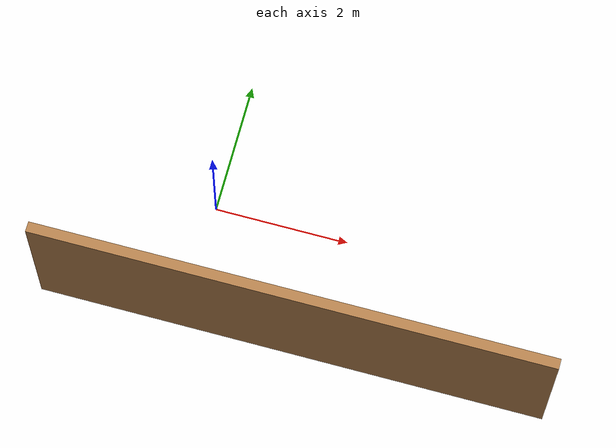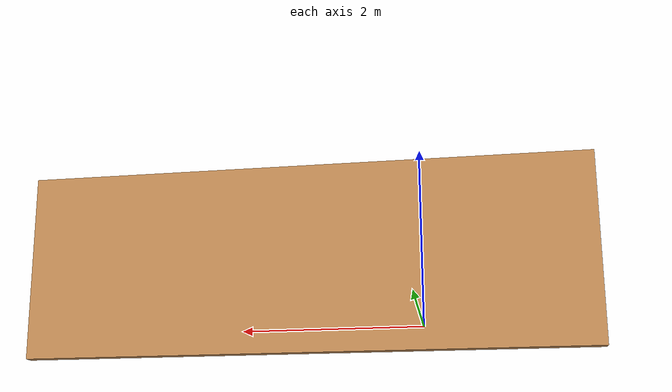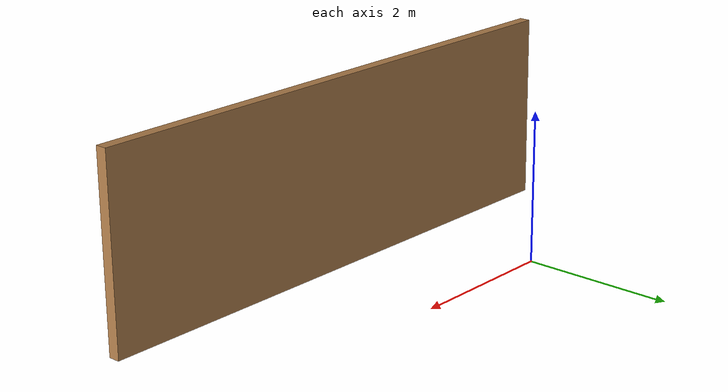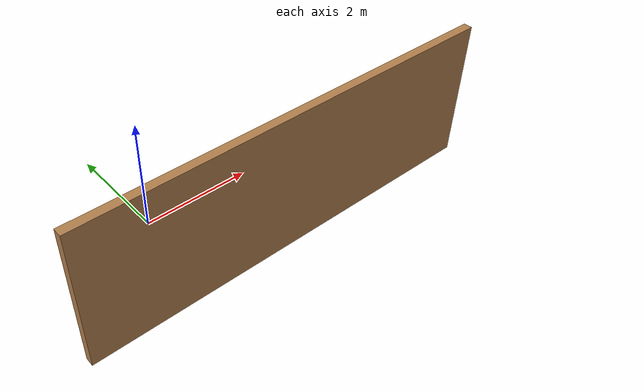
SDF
<?xml version='1.0'?>
<sdf version='1.7'>
  <model name='Untitled'>
    <pose>1.625 -0.9275 0 0 -0 0</pose>
    <link name='Wall_6'>
      <collision name='Wall_6_Collision'>
        <geometry>
          <box>
            <size>7.5 0.15 2.5</size>
          </box>
        </geometry>
        <pose>0 0 1.25 0 -0 0</pose>
      </collision>
      <visual name='Wall_6_Visual'>
        <pose>0 0 1.25 0 -0 0</pose>
        <geometry>
          <box>
            <size>7.5 0.15 2.5</size>
          </box>
        </geometry>
        <material>
          <script>
            <uri>file://media/materials/scripts/gazebo.material</uri>
            <name>Gazebo/Wood</name>
          </script>
          <ambient>0.996078 0.47451 0.0196078 1</ambient>
        </material>
        <meta>
          <layer>0</layer>
        </meta>
      </visual>
      <pose>0 -0.8525 0 0 -0 0</pose>
    </link>
    <static>1</static>
  </model>
</sdf>
